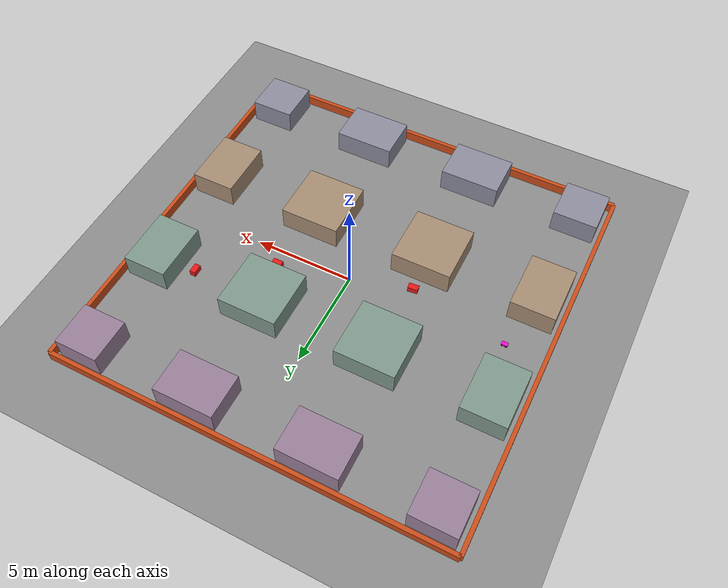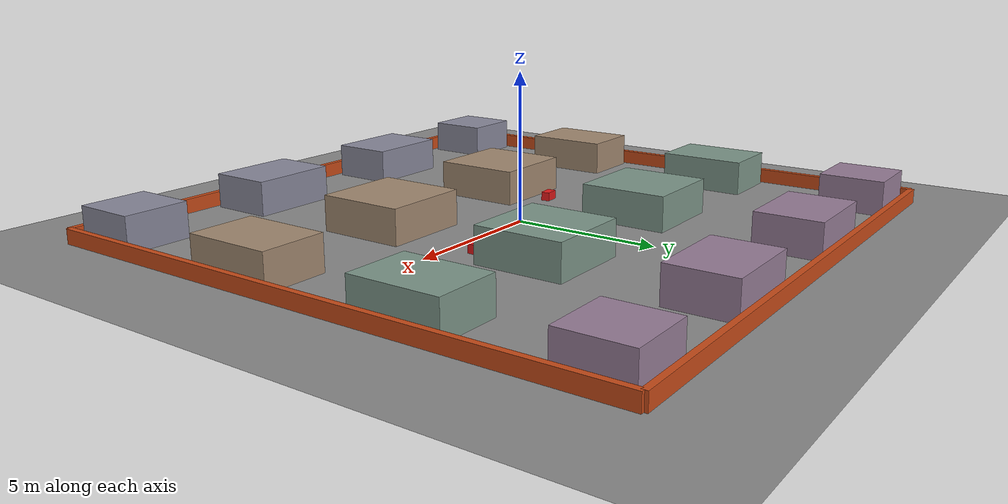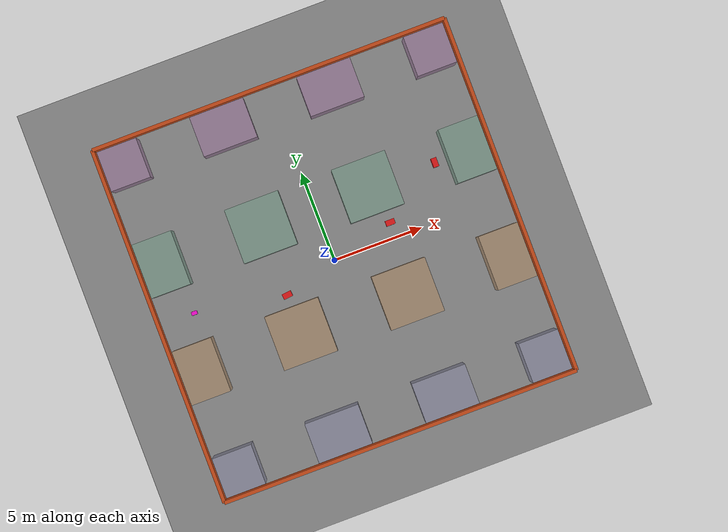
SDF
<sdf version="1.9">
 <world name="limo_town_actors">
  <physics name="1ms" type="ode">
   <max_step_size>0.001</max_step_size>
   <real_time_factor>1.0</real_time_factor>
  </physics>
  <plugin filename="gz-sim-physics-system" name="gz::sim::systems::Physics"/>
  <plugin filename="gz-sim-user-commands-system" name="gz::sim::systems::UserCommands"/>
  <plugin filename="gz-sim-scene-broadcaster-system" name="gz::sim::systems::SceneBroadcaster"/>
  <plugin filename="gz-sim-sensors-system" name="gz::sim::systems::Sensors">
   <render_engine>ogre2</render_engine>
  </plugin>
  <plugin filename="gz-sim-imu-system" name="gz::sim::systems::Imu"/>
  <plugin filename="gz-sim-contact-system" name="gz::sim::systems::Contact"/>
  <light type="directional" name="sun">
   <pose>0 0 10 0 0 0</pose>
   <diffuse>0.9 0.9 0.9 1</diffuse>
   <specular>0.3 0.3 0.3 1</specular>
   <direction>-0.5 0.1 -0.9</direction>
  </light>
  <model name="ground_plane">
   <static>true</static>
   <link name="link">
    <collision name="collision">
     <geometry><plane><normal>0 0 1</normal><size>100 100</size></plane></geometry>
     <surface><friction><ode><mu>0.8</mu><mu2>0.8</mu2></ode></friction></surface>
    </collision>
    <visual name="visual">
     <geometry><plane><normal>0 0 1</normal><size>100 100</size></plane></geometry>
     <material><ambient>0.45 0.45 0.45 1</ambient><diffuse>0.55 0.55 0.55 1</diffuse></material>
    </visual>
   </link>
  </model>
  <model name="wall_north">
   <static>true</static>
   <pose>0 10.0 0.25 0 0 0.0</pose>
   <link name="link">
    <collision name="collision"><geometry><box><size>20.0 0.2 0.5</size></box></geometry></collision>
    <visual name="visual">
     <geometry><box><size>20.0 0.2 0.5</size></box></geometry>
     <material><ambient>0.8 0.3 0.1 1</ambient><diffuse>0.8 0.3 0.1 1</diffuse></material>
    </visual>
   </link>
  </model>
  <model name="wall_south">
   <static>true</static>
   <pose>0 -10.0 0.25 0 0 0.0</pose>
   <link name="link">
    <collision name="collision"><geometry><box><size>20.0 0.2 0.5</size></box></geometry></collision>
    <visual name="visual">
     <geometry><box><size>20.0 0.2 0.5</size></box></geometry>
     <material><ambient>0.8 0.3 0.1 1</ambient><diffuse>0.8 0.3 0.1 1</diffuse></material>
    </visual>
   </link>
  </model>
  <model name="wall_east">
   <static>true</static>
   <pose>10.0 0 0.25 0 0 0.0</pose>
   <link name="link">
    <collision name="collision"><geometry><box><size>0.2 20.0 0.5</size></box></geometry></collision>
    <visual name="visual">
     <geometry><box><size>0.2 20.0 0.5</size></box></geometry>
     <material><ambient>0.8 0.3 0.1 1</ambient><diffuse>0.8 0.3 0.1 1</diffuse></material>
    </visual>
   </link>
  </model>
  <model name="wall_west">
   <static>true</static>
   <pose>-10.0 0 0.25 0 0 0.0</pose>
   <link name="link">
    <collision name="collision"><geometry><box><size>0.2 20.0 0.5</size></box></geometry></collision>
    <visual name="visual">
     <geometry><box><size>0.2 20.0 0.5</size></box></geometry>
     <material><ambient>0.8 0.3 0.1 1</ambient><diffuse>0.8 0.3 0.1 1</diffuse></material>
    </visual>
   </link>
  </model>
  <model name="building_0">
   <static>true</static>
   <pose>-8.6 -8.6 0.6 0 0 0.0</pose>
   <link name="link">
    <collision name="collision"><geometry><box><size>2.2 2.2 1.2</size></box></geometry></collision>
    <visual name="visual">
     <geometry><box><size>2.2 2.2 1.2</size></box></geometry>
     <material><ambient>0.55 0.55 0.62 1</ambient><diffuse>0.55 0.55 0.62 1</diffuse></material>
    </visual>
   </link>
  </model>
  <model name="building_1">
   <static>true</static>
   <pose>-8.6 -3.0 0.6 0 0 0.0</pose>
   <link name="link">
    <collision name="collision"><geometry><box><size>2.2 3.0 1.2</size></box></geometry></collision>
    <visual name="visual">
     <geometry><box><size>2.2 3.0 1.2</size></box></geometry>
     <material><ambient>0.65 0.55 0.45 1</ambient><diffuse>0.65 0.55 0.45 1</diffuse></material>
    </visual>
   </link>
  </model>
  <model name="building_2">
   <static>true</static>
   <pose>-8.6 3.0 0.6 0 0 0.0</pose>
   <link name="link">
    <collision name="collision"><geometry><box><size>2.2 3.0 1.2</size></box></geometry></collision>
    <visual name="visual">
     <geometry><box><size>2.2 3.0 1.2</size></box></geometry>
     <material><ambient>0.5 0.6 0.55 1</ambient><diffuse>0.5 0.6 0.55 1</diffuse></material>
    </visual>
   </link>
  </model>
  <model name="building_3">
   <static>true</static>
   <pose>-8.6 8.6 0.6 0 0 0.0</pose>
   <link name="link">
    <collision name="collision"><geometry><box><size>2.2 2.2 1.2</size></box></geometry></collision>
    <visual name="visual">
     <geometry><box><size>2.2 2.2 1.2</size></box></geometry>
     <material><ambient>0.6 0.5 0.6 1</ambient><diffuse>0.6 0.5 0.6 1</diffuse></material>
    </visual>
   </link>
  </model>
  <model name="building_4">
   <static>true</static>
   <pose>-3.0 -8.6 0.6 0 0 0.0</pose>
   <link name="link">
    <collision name="collision"><geometry><box><size>3.0 2.2 1.2</size></box></geometry></collision>
    <visual name="visual">
     <geometry><box><size>3.0 2.2 1.2</size></box></geometry>
     <material><ambient>0.55 0.55 0.62 1</ambient><diffuse>0.55 0.55 0.62 1</diffuse></material>
    </visual>
   </link>
  </model>
  <model name="building_5">
   <static>true</static>
   <pose>-3.0 -3.0 0.6 0 0 0.0</pose>
   <link name="link">
    <collision name="collision"><geometry><box><size>3.0 3.0 1.2</size></box></geometry></collision>
    <visual name="visual">
     <geometry><box><size>3.0 3.0 1.2</size></box></geometry>
     <material><ambient>0.65 0.55 0.45 1</ambient><diffuse>0.65 0.55 0.45 1</diffuse></material>
    </visual>
   </link>
  </model>
  <model name="building_6">
   <static>true</static>
   <pose>-3.0 3.0 0.6 0 0 0.0</pose>
   <link name="link">
    <collision name="collision"><geometry><box><size>3.0 3.0 1.2</size></box></geometry></collision>
    <visual name="visual">
     <geometry><box><size>3.0 3.0 1.2</size></box></geometry>
     <material><ambient>0.5 0.6 0.55 1</ambient><diffuse>0.5 0.6 0.55 1</diffuse></material>
    </visual>
   </link>
  </model>
  <model name="building_7">
   <static>true</static>
   <pose>-3.0 8.6 0.6 0 0 0.0</pose>
   <link name="link">
    <collision name="collision"><geometry><box><size>3.0 2.2 1.2</size></box></geometry></collision>
    <visual name="visual">
     <geometry><box><size>3.0 2.2 1.2</size></box></geometry>
     <material><ambient>0.6 0.5 0.6 1</ambient><diffuse>0.6 0.5 0.6 1</diffuse></material>
    </visual>
   </link>
  </model>
  <model name="building_8">
   <static>true</static>
   <pose>3.0 -8.6 0.6 0 0 0.0</pose>
   <link name="link">
    <collision name="collision"><geometry><box><size>3.0 2.2 1.2</size></box></geometry></collision>
    <visual name="visual">
     <geometry><box><size>3.0 2.2 1.2</size></box></geometry>
     <material><ambient>0.55 0.55 0.62 1</ambient><diffuse>0.55 0.55 0.62 1</diffuse></material>
    </visual>
   </link>
  </model>
  <model name="building_9">
   <static>true</static>
   <pose>3.0 -3.0 0.6 0 0 0.0</pose>
   <link name="link">
    <collision name="collision"><geometry><box><size>3.0 3.0 1.2</size></box></geometry></collision>
    <visual name="visual">
     <geometry><box><size>3.0 3.0 1.2</size></box></geometry>
     <material><ambient>0.65 0.55 0.45 1</ambient><diffuse>0.65 0.55 0.45 1</diffuse></material>
    </visual>
   </link>
  </model>
  <model name="building_10">
   <static>true</static>
   <pose>3.0 3.0 0.6 0 0 0.0</pose>
   <link name="link">
    <collision name="collision"><geometry><box><size>3.0 3.0 1.2</size></box></geometry></collision>
    <visual name="visual">
     <geometry><box><size>3.0 3.0 1.2</size></box></geometry>
     <material><ambient>0.5 0.6 0.55 1</ambient><diffuse>0.5 0.6 0.55 1</diffuse></material>
    </visual>
   </link>
  </model>
  <model name="building_11">
   <static>true</static>
   <pose>3.0 8.6 0.6 0 0 0.0</pose>
   <link name="link">
    <collision name="collision"><geometry><box><size>3.0 2.2 1.2</size></box></geometry></collision>
    <visual name="visual">
     <geometry><box><size>3.0 2.2 1.2</size></box></geometry>
     <material><ambient>0.6 0.5 0.6 1</ambient><diffuse>0.6 0.5 0.6 1</diffuse></material>
    </visual>
   </link>
  </model>
  <model name="building_12">
   <static>true</static>
   <pose>8.6 -8.6 0.6 0 0 0.0</pose>
   <link name="link">
    <collision name="collision"><geometry><box><size>2.2 2.2 1.2</size></box></geometry></collision>
    <visual name="visual">
     <geometry><box><size>2.2 2.2 1.2</size></box></geometry>
     <material><ambient>0.55 0.55 0.62 1</ambient><diffuse>0.55 0.55 0.62 1</diffuse></material>
    </visual>
   </link>
  </model>
  <model name="building_13">
   <static>true</static>
   <pose>8.6 -3.0 0.6 0 0 0.0</pose>
   <link name="link">
    <collision name="collision"><geometry><box><size>2.2 3.0 1.2</size></box></geometry></collision>
    <visual name="visual">
     <geometry><box><size>2.2 3.0 1.2</size></box></geometry>
     <material><ambient>0.65 0.55 0.45 1</ambient><diffuse>0.65 0.55 0.45 1</diffuse></material>
    </visual>
   </link>
  </model>
  <model name="building_14">
   <static>true</static>
   <pose>8.6 3.0 0.6 0 0 0.0</pose>
   <link name="link">
    <collision name="collision"><geometry><box><size>2.2 3.0 1.2</size></box></geometry></collision>
    <visual name="visual">
     <geometry><box><size>2.2 3.0 1.2</size></box></geometry>
     <material><ambient>0.5 0.6 0.55 1</ambient><diffuse>0.5 0.6 0.55 1</diffuse></material>
    </visual>
   </link>
  </model>
  <model name="building_15">
   <static>true</static>
   <pose>8.6 8.6 0.6 0 0 0.0</pose>
   <link name="link">
    <collision name="collision"><geometry><box><size>2.2 2.2 1.2</size></box></geometry></collision>
    <visual name="visual">
     <geometry><box><size>2.2 2.2 1.2</size></box></geometry>
     <material><ambient>0.6 0.5 0.6 1</ambient><diffuse>0.6 0.5 0.6 1</diffuse></material>
    </visual>
   </link>
  </model>
  <model name="parked_box_1">
   <static>true</static>
   <pose>-3.0 -0.85 0.15 0 0 0.1</pose>
   <link name="link">
    <collision name="collision"><geometry><box><size>0.5 0.3 0.3</size></box></geometry></collision>
    <visual name="visual">
     <geometry><box><size>0.5 0.3 0.3</size></box></geometry>
     <material><ambient>0.9 0.1 0.1 1</ambient><diffuse>0.9 0.1 0.1 1</diffuse></material>
    </visual>
   </link>
  </model>
  <model name="parked_box_2">
   <static>true</static>
   <pose>3.5 0.85 0.15 0 0 0.0</pose>
   <link name="link">
    <collision name="collision"><geometry><box><size>0.5 0.3 0.3</size></box></geometry></collision>
    <visual name="visual">
     <geometry><box><size>0.5 0.3 0.3</size></box></geometry>
     <material><ambient>0.9 0.1 0.1 1</ambient><diffuse>0.9 0.1 0.1 1</diffuse></material>
    </visual>
   </link>
  </model>
  <model name="parked_box_3">
   <static>true</static>
   <pose>6.85 3.0 0.15 0 0 0.0</pose>
   <link name="link">
    <collision name="collision"><geometry><box><size>0.3 0.5 0.3</size></box></geometry></collision>
    <visual name="visual">
     <geometry><box><size>0.3 0.5 0.3</size></box></geometry>
     <material><ambient>0.9 0.1 0.1 1</ambient><diffuse>0.9 0.1 0.1 1</diffuse></material>
    </visual>
   </link>
  </model>
  <include><uri>model://limo_pro</uri><name>limo</name><pose>-8.0 0.0 0.055 0 0 0</pose></include>
 </world>
</sdf>

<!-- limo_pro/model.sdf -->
<sdf version="1.9">
  <model name="limo_pro">
    <static>false</static>

    <!-- ============ CHASSIS ============ -->
    <link name="base_link">
      <inertial>
        <mass>4.5</mass>
        <inertia>
          <ixx>0.045</ixx><iyy>0.08</iyy><izz>0.09</izz>
          <ixy>0</ixy><ixz>0</ixz><iyz>0</iyz>
        </inertia>
      </inertial>
      <visual name="chassis_visual">
        <geometry>
          <box><size>0.32 0.20 0.10</size></box>
        </geometry>
        <material>
          <ambient>1.0 0.0 0.85 1</ambient>
          <diffuse>1.0 0.05 0.85 1</diffuse>
          <emissive>0.35 0.0 0.3 1</emissive>
        </material>
      </visual>
      <collision name="chassis_collision">
        <geometry>
          <box><size>0.32 0.20 0.10</size></box>
        </geometry>
      </collision>

      <!-- ============ CAMERA SENSOR ============ -->
      <sensor name="camera" type="camera">
        <pose>0.16 0 0.12 0 0 0</pose>
        <always_on>true</always_on>
        <update_rate>30</update_rate>
        <topic>limo/camera</topic>
        <camera>
          <horizontal_fov>1.2</horizontal_fov>
          <image>
            <width>640</width>
            <height>480</height>
            <format>R8G8B8</format>
          </image>
          <clip><near>0.05</near><far>50</far></clip>
        </camera>
      </sensor>

      <!-- ============ LIDAR SENSOR ============ -->
      <sensor name="lidar" type="gpu_lidar">
        <pose>0.0 0 0.15 0 0 0</pose>
        <always_on>true</always_on>
        <update_rate>10</update_rate>
        <topic>limo/lidar</topic>
        <lidar>
          <scan>
            <horizontal>
              <samples>360</samples>
              <resolution>1</resolution>
              <min_angle>0</min_angle>
              <max_angle>6.28318</max_angle>
            </horizontal>
          </scan>
          <range>
            <min>0.1</min>
            <max>12.0</max>
            <resolution>0.01</resolution>
          </range>
        </lidar>
      </sensor>

      <!-- ============ IMU SENSOR ============ -->
      <sensor name="imu" type="imu">
        <pose>0 0 0.05 0 0 0</pose>
        <always_on>true</always_on>
        <update_rate>100</update_rate>
        <topic>limo/imu</topic>
        <imu>
          <angular_velocity>
            <x><noise type="gaussian"><mean>0</mean><stddev>0.001</stddev></noise></x>
            <y><noise type="gaussian"><mean>0</mean><stddev>0.001</stddev></noise></y>
            <z><noise type="gaussian"><mean>0</mean><stddev>0.001</stddev></noise></z>
          </angular_velocity>
          <linear_acceleration>
            <x><noise type="gaussian"><mean>0</mean><stddev>0.02</stddev></noise></x>
            <y><noise type="gaussian"><mean>0</mean><stddev>0.02</stddev></noise></y>
            <z><noise type="gaussian"><mean>0</mean><stddev>0.02</stddev></noise></z>
          </linear_acceleration>
        </imu>
      </sensor>
    </link>

    <!-- ============ REAR LEFT WHEEL ============ -->
    <link name="rear_left_wheel">
      <pose>-0.1 0.096 -0.03 -1.5707 0 0</pose>
      <inertial>
        <mass>0.3</mass>
        <inertia>
          <ixx>0.0002</ixx><iyy>0.0002</iyy><izz>0.0003</izz>
          <ixy>0</ixy><ixz>0</ixz><iyz>0</iyz>
        </inertia>
      </inertial>
      <visual name="visual">
        <geometry><cylinder><radius>0.045</radius><length>0.03</length></cylinder></geometry>
        <material><ambient>0.1 0.1 0.1 1</ambient><diffuse>0.15 0.15 0.15 1</diffuse></material>
      </visual>
      <collision name="collision">
        <geometry><cylinder><radius>0.045</radius><length>0.03</length></cylinder></geometry>
        <surface>
          <friction><ode><mu>1.0</mu><mu2>1.0</mu2></ode></friction>
        </surface>
      </collision>
    </link>
    <joint name="rear_left_wheel_joint" type="revolute">
      <parent>base_link</parent><child>rear_left_wheel</child>
      <axis><xyz>0 0 1</xyz></axis>
    </joint>

    <!-- ============ REAR RIGHT WHEEL ============ -->
    <link name="rear_right_wheel">
      <pose>-0.1 -0.096 -0.03 -1.5707 0 0</pose>
      <inertial>
        <mass>0.3</mass>
        <inertia>
          <ixx>0.0002</ixx><iyy>0.0002</iyy><izz>0.0003</izz>
          <ixy>0</ixy><ixz>0</ixz><iyz>0</iyz>
        </inertia>
      </inertial>
      <visual name="visual">
        <geometry><cylinder><radius>0.045</radius><length>0.03</length></cylinder></geometry>
        <material><ambient>0.1 0.1 0.1 1</ambient><diffuse>0.15 0.15 0.15 1</diffuse></material>
      </visual>
      <collision name="collision">
        <geometry><cylinder><radius>0.045</radius><length>0.03</length></cylinder></geometry>
        <surface>
          <friction><ode><mu>1.0</mu><mu2>1.0</mu2></ode></friction>
        </surface>
      </collision>
    </link>
    <joint name="rear_right_wheel_joint" type="revolute">
      <parent>base_link</parent><child>rear_right_wheel</child>
      <axis><xyz>0 0 1</xyz></axis>
    </joint>

    <!-- ============ FRONT LEFT STEERING + WHEEL ============ -->
    <link name="front_left_steering">
      <pose>0.1 0.096 -0.03 0 0 0</pose>
      <inertial><mass>0.05</mass>
        <inertia><ixx>0.00001</ixx><iyy>0.00001</iyy><izz>0.00001</izz>
          <ixy>0</ixy><ixz>0</ixz><iyz>0</iyz></inertia>
      </inertial>
    </link>
    <joint name="front_left_steering_joint" type="revolute">
      <parent>base_link</parent><child>front_left_steering</child>
      <axis><xyz>0 0 1</xyz>
        <limit><lower>-0.48</lower><upper>0.48</upper><effort>1e6</effort></limit>
      </axis>
    </joint>

    <link name="front_left_wheel">
      <pose>0.1 0.096 -0.03 -1.5707 0 0</pose>
      <inertial>
        <mass>0.3</mass>
        <inertia>
          <ixx>0.0002</ixx><iyy>0.0002</iyy><izz>0.0003</izz>
          <ixy>0</ixy><ixz>0</ixz><iyz>0</iyz>
        </inertia>
      </inertial>
      <visual name="visual">
        <geometry><cylinder><radius>0.045</radius><length>0.03</length></cylinder></geometry>
        <material><ambient>0.1 0.1 0.1 1</ambient><diffuse>0.15 0.15 0.15 1</diffuse></material>
      </visual>
      <collision name="collision">
        <geometry><cylinder><radius>0.045</radius><length>0.03</length></cylinder></geometry>
        <surface>
          <friction><ode><mu>1.0</mu><mu2>1.0</mu2></ode></friction>
        </surface>
      </collision>
    </link>
    <joint name="front_left_wheel_joint" type="revolute">
      <parent>front_left_steering</parent><child>front_left_wheel</child>
      <axis><xyz>0 0 1</xyz></axis>
    </joint>

    <!-- ============ FRONT RIGHT STEERING + WHEEL ============ -->
    <link name="front_right_steering">
      <pose>0.1 -0.096 -0.03 0 0 0</pose>
      <inertial><mass>0.05</mass>
        <inertia><ixx>0.00001</ixx><iyy>0.00001</iyy><izz>0.00001</izz>
          <ixy>0</ixy><ixz>0</ixz><iyz>0</iyz></inertia>
      </inertial>
    </link>
    <joint name="front_right_steering_joint" type="revolute">
      <parent>base_link</parent><child>front_right_steering</child>
      <axis><xyz>0 0 1</xyz>
        <limit><lower>-0.48</lower><upper>0.48</upper><effort>1e6</effort></limit>
      </axis>
    </joint>

    <link name="front_right_wheel">
      <pose>0.1 -0.096 -0.03 -1.5707 0 0</pose>
      <inertial>
        <mass>0.3</mass>
        <inertia>
          <ixx>0.0002</ixx><iyy>0.0002</iyy><izz>0.0003</izz>
          <ixy>0</ixy><ixz>0</ixz><iyz>0</iyz>
        </inertia>
      </inertial>
      <visual name="visual">
        <geometry><cylinder><radius>0.045</radius><length>0.03</length></cylinder></geometry>
        <material><ambient>0.1 0.1 0.1 1</ambient><diffuse>0.15 0.15 0.15 1</diffuse></material>
      </visual>
      <collision name="collision">
        <geometry><cylinder><radius>0.045</radius><length>0.03</length></cylinder></geometry>
        <surface>
          <friction><ode><mu>1.0</mu><mu2>1.0</mu2></ode></friction>
        </surface>
      </collision>
    </link>
    <joint name="front_right_wheel_joint" type="revolute">
      <parent>front_right_steering</parent><child>front_right_wheel</child>
      <axis><xyz>0 0 1</xyz></axis>
    </joint>

    <!-- ============ ACKERMANN STEERING PLUGIN ============ -->
    <plugin filename="gz-sim-ackermann-steering-system"
            name="gz::sim::systems::AckermannSteering">
      <left_joint>front_left_wheel_joint</left_joint>
      <right_joint>front_right_wheel_joint</right_joint>
      <left_steering_joint>front_left_steering_joint</left_steering_joint>
      <right_steering_joint>front_right_steering_joint</right_steering_joint>
      <kingpin_width>0.192</kingpin_width>
      <steering_limit>0.48</steering_limit>
      <steer_p_gain>8.0</steer_p_gain>
      <wheel_base>0.2</wheel_base>
      <wheel_separation>0.192</wheel_separation>
      <wheel_radius>0.045</wheel_radius>
      <topic>limo/cmd_vel</topic>
      <odom_topic>limo/odom</odom_topic>
      <tf_topic>limo/tf</tf_topic>
      <frame_id>odom</frame_id>
      <child_frame_id>base_link</child_frame_id>
      <odom_publish_frequency>20</odom_publish_frequency>
    </plugin>

    <!-- Joint state publisher for odometry -->
    <plugin filename="gz-sim-joint-state-publisher-system"
            name="gz::sim::systems::JointStatePublisher">
      <topic>limo/joint_states</topic>
    </plugin>

  </model>
</sdf>
